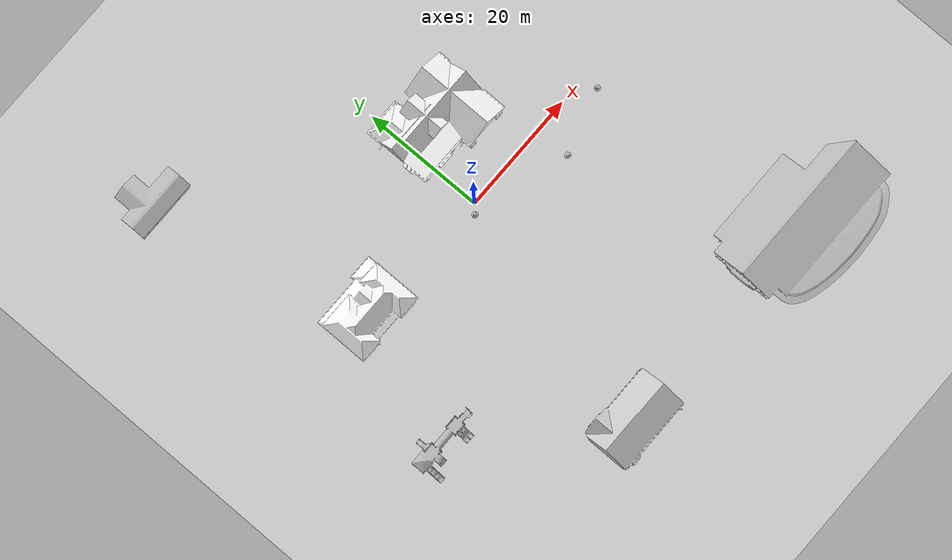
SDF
<sdf version="1.7">
 <world name="default">
  <light name="sun" type="directional">
   <pose>0 0 10 0 -0 0</pose>
   <diffuse>0.8 0.8 0.8 1</diffuse>
   <specular>0.2 0.2 0.2 1</specular>
   <attenuation>
    <range>1000</range>
    <constant>0.9</constant>
    <linear>0.01</linear>
    <quadratic>0.001</quadratic>
   </attenuation>
   <direction>-0.5 0.1 -0.9</direction>
   <spot><inner_angle>0</inner_angle><outer_angle>0</outer_angle><falloff>0</falloff></spot>
  </light>
  <model name="ground_plane">
   <static>1</static>
   <link name="link">
    <collision name="collision">
     <geometry><plane><normal>0 0 1</normal><size>100 100</size></plane></geometry>
     <surface>
      <contact><collide_bitmask>65535</collide_bitmask></contact>
      <friction><ode><mu>100</mu><mu2>50</mu2></ode></friction>
     </surface>
    </collision>
    <visual name="visual">
     <cast_shadows>0</cast_shadows>
     <geometry><plane><normal>0 0 1</normal><size>100 100</size></plane></geometry>
     <material>
      <script><uri>file://media/materials/scripts/gazebo.material</uri><name>Gazebo/Grey</name></script>
     </material>
    </visual>
   </link>
  </model>
  <gravity>0 0 -9.8</gravity>
  <magnetic_field>6e-06 2.3e-05 -4.2e-05</magnetic_field>
  <atmosphere type="adiabatic"/>
  <physics type="ode">
   <max_step_size>0.001</max_step_size>
   <real_time_factor>1</real_time_factor>
   <real_time_update_rate>1000</real_time_update_rate>
  </physics>
  <scene><ambient>0.4 0.4 0.4 1</ambient><background>0.7 0.7 0.7 1</background><shadows>1</shadows></scene>
  <audio><device>default</device></audio>
  <spherical_coordinates>
   <surface_model>EARTH_WGS84</surface_model>
   <latitude_deg>0</latitude_deg>
   <longitude_deg>0</longitude_deg>
   <elevation>0</elevation>
   <heading_deg>0</heading_deg>
  </spherical_coordinates>
  <model name="Construction Barrel">
   <link name="link">
    <inertial>
     <pose>0 0 0.4 0 -0 0</pose>
     <mass>500</mass>
     <inertia><ixx>51.2096</ixx><iyy>51.2096</iyy><izz>25</izz><ixy>0</ixy><ixz>0</ixz><iyz>0</iyz></inertia>
    </inertial>
    <collision name="collision">
     <geometry><mesh><uri>model://construction_barrel/meshes/construction_barrel.dae</uri></mesh></geometry>
    </collision>
    <visual name="visual">
     <geometry><mesh><uri>model://construction_barrel/meshes/construction_barrel.dae</uri></mesh></geometry>
    </visual>
   </link>
   <pose>-1.27419 -1.14102 1e-06 3e-06 2e-06 -2e-05</pose>
  </model>
  <model name="House 1">
   <static>1</static>
   <link name="link">
    <collision name="collision">
     <geometry><mesh><uri>model://house_1/meshes/house_1.dae</uri><scale>1.5 1.5 1.5</scale></mesh></geometry>
    </collision>
    <visual name="visual">
     <geometry><mesh><uri>model://house_1/meshes/house_1.dae</uri><scale>1.5 1.5 1.5</scale></mesh></geometry>
     <material>
      <script>
       <uri>model://house_1/materials/scripts</uri>
       <uri>model://house_1/materials/textures</uri>
       <name>House_1/Diffuse</name>
      </script>
      <shader type="normal_map_tangent_space"><normal_map>House_1_Normal.png</normal_map></shader>
     </material>
    </visual>
   </link>
   <pose>5.57726 12.4045 0 0 -0 0</pose>
  </model>
  <model name="House 2">
   <static>1</static>
   <link name="link">
    <collision name="collision">
     <geometry><mesh><uri>model://house_2/meshes/house_2.dae</uri><scale>1.5 1.5 1.5</scale></mesh></geometry>
    </collision>
    <visual name="visual">
     <geometry><mesh><uri>model://house_2/meshes/house_2.dae</uri><scale>1.5 1.5 1.5</scale></mesh></geometry>
     <material>
      <script>
       <uri>model://house_2/materials/scripts</uri>
       <uri>model://house_2/materials/textures</uri>
       <uri>model://house_1/materials/textures</uri>
       <name>House_2/Diffuse</name>
      </script>
      <shader type="normal_map_tangent_space">
       <normal_map>model://house_1/materials/textures/House_1_Normal.png</normal_map>
      </shader>
     </material>
    </visual>
   </link>
   <pose>-23.5271 0.804672 0 0 -0 0</pose>
  </model>
  <model name="House 3">
   <static>1</static>
   <link name="link">
    <collision name="collision">
     <geometry><mesh><uri>model://house_3/meshes/house_3.dae</uri><scale>1.5 1.5 1.5</scale></mesh></geometry>
    </collision>
    <visual name="visual">
     <geometry><mesh><uri>model://house_3/meshes/house_3.dae</uri><scale>1.5 1.5 1.5</scale></mesh></geometry>
     <material>
      <script>
       <uri>model://house_3/materials/scripts</uri>
       <uri>model://house_3/materials/textures</uri>
       <uri>model://house_1/materials/textures</uri>
       <name>House_3/Diffuse</name>
      </script>
      <shader type="normal_map_tangent_space">
       <normal_map>model://house_1/materials/textures/House_1_Normal.png</normal_map>
      </shader>
     </material>
    </visual>
   </link>
   <pose>-8.97381 -38.6481 0 0 -0 0</pose>
  </model>
  <model name="post_office">
   <static>1</static>
   <link name="link">
    <collision name="collision">
     <geometry><mesh><uri>model://post_office/meshes/post_office.dae</uri></mesh></geometry>
    </collision>
    <visual name="visual">
     <geometry><mesh><uri>model://post_office/meshes/post_office.dae</uri></mesh></geometry>
    </visual>
   </link>
   <pose>-30.6122 35.4213 0 0 -0 0</pose>
  </model>
  <model name="playground">
   <static>1</static>
   <link name="link">
    <collision name="collision">
     <geometry><mesh><uri>model://playground/meshes/playground.dae</uri></mesh></geometry>
    </collision>
    <visual name="visual">
     <geometry><mesh><uri>model://playground/meshes/playground.dae</uri></mesh></geometry>
    </visual>
   </link>
   <pose>-29.6134 -19.8435 0 0 -0 0</pose>
  </model>
  <model name="osrf_first_office">
   <static>1</static>
   <link name="link">
    <collision name="collision">
     <geometry><mesh><uri>model://osrf_first_office/meshes/osrf_first_office.dae</uri></mesh></geometry>
    </collision>
    <visual name="visual">
     <geometry><mesh><uri>model://osrf_first_office/meshes/osrf_first_office.dae</uri></mesh></geometry>
    </visual>
   </link>
   <pose>30.7006 -36.9928 0 0 -0 0</pose>
  </model>
  <model name="Construction Barrel_0">
   <link name="link">
    <inertial>
     <pose>0 0 0.4 0 -0 0</pose>
     <mass>500</mass>
     <inertia><ixx>51.2096</ixx><iyy>51.2096</iyy><izz>25</izz><ixy>0</ixy><ixz>0</ixz><iyz>0</iyz></inertia>
    </inertial>
    <collision name="collision">
     <geometry><mesh><uri>model://construction_barrel/meshes/construction_barrel.dae</uri></mesh></geometry>
    </collision>
    <visual name="visual">
     <geometry><mesh><uri>model://construction_barrel/meshes/construction_barrel.dae</uri></mesh></geometry>
    </visual>
   </link>
   <pose>14.4195 -5.76724 1e-06 2e-06 3e-06 -6e-06</pose>
  </model>
  <model name="Construction Barrel_1">
   <link name="link">
    <inertial>
     <pose>0 0 0.4 0 -0 0</pose>
     <mass>500</mass>
     <inertia><ixx>51.2096</ixx><iyy>51.2096</iyy><izz>25</izz><ixy>0</ixy><ixz>0</ixz><iyz>0</iyz></inertia>
    </inertial>
    <collision name="collision">
     <geometry><mesh><uri>model://construction_barrel/meshes/construction_barrel.dae</uri></mesh></geometry>
    </collision>
    <visual name="visual">
     <geometry><mesh><uri>model://construction_barrel/meshes/construction_barrel.dae</uri></mesh></geometry>
    </visual>
   </link>
   <pose>24.9944 -2.55692 0 0 0 -3e-06</pose>
  </model>
 </world>
</sdf>
